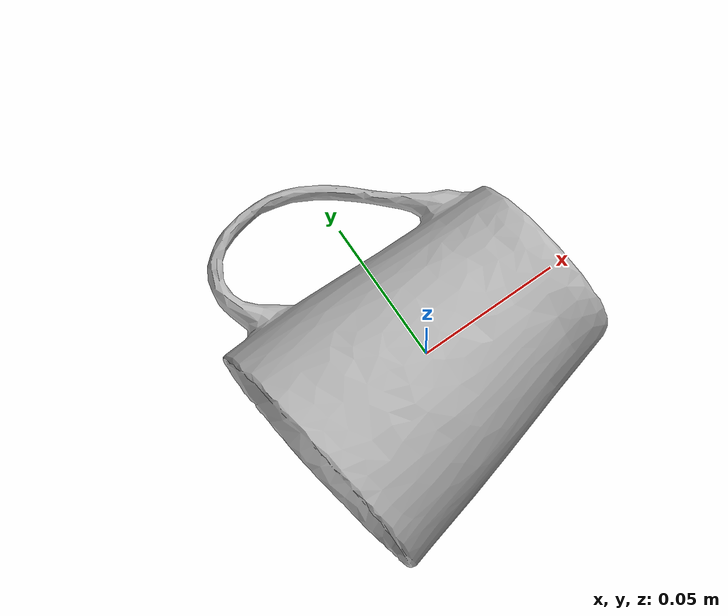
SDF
<?xml version='1.0'?>
<sdf version='1.6'>
	<model name='a_mug2'>
		<static>false</static>
		<pose>0 0 0 0 0 0</pose>

		<link name='link'>
			<inertial>
			<mass>0.329</mass>
			<pose>0.0010025 -0.00022342 -0.00040089 0 0 0</pose>
				<inertia>
					<ixx>1.3761e-06</ixx>
					<ixy>0</ixy>
					<ixz>0</ixz>
					<iyy>1.227e-06</iyy>
					<iyz>0</iyz>
					<izz>8.7996e-07</izz>
				</inertia>
			</inertial>
			<collision name='collision'>
				<geometry>
					<mesh>
						<uri>model://a_mug2/a_mug2.dae</uri>
					</mesh>
				</geometry>
				<surface>
					<friction>
						<ode>
							<mu>0.2</mu>
							<mu2>0.2</mu2>
						</ode>
					</friction>
				</surface>
			</collision>
			<visual name='visual'>
				<geometry>
					<mesh>
						<uri>model://a_mug2/a_mug2.dae</uri>
					</mesh>
				</geometry>
			</visual>
		</link>
	</model>
</sdf>
